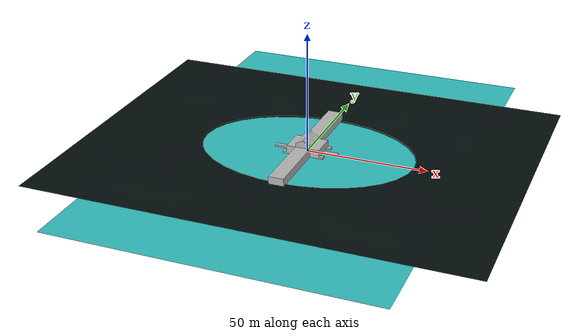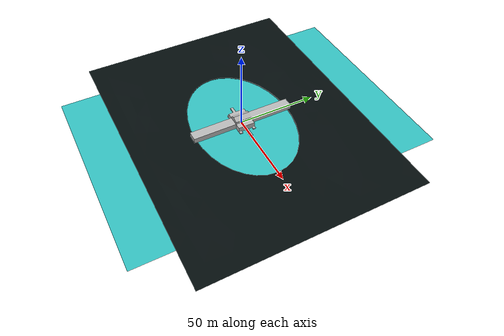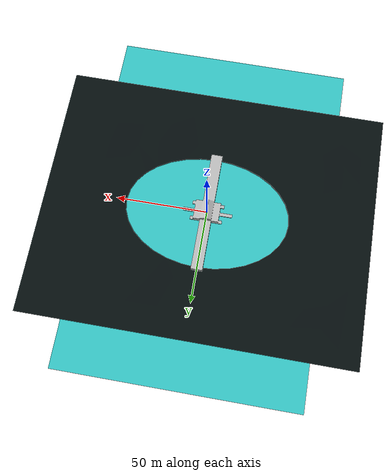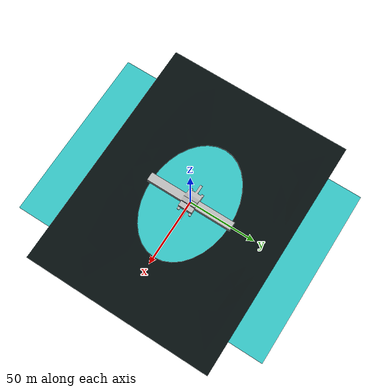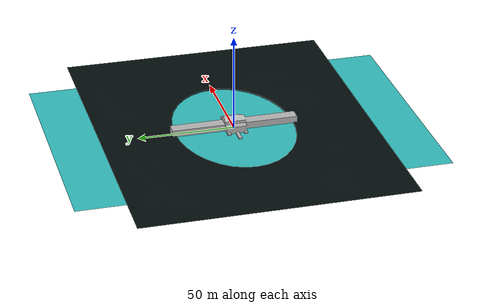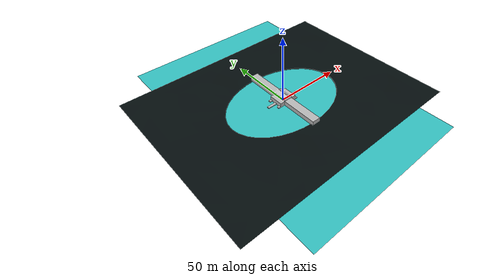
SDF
<sdf version='1.6'>
  <world name='transdec'>
    <gui>
      <camera name='user_camera'>
        <pose>0 0 100 0 1.57 1.57</pose>
      </camera>
    </gui>

    <physics name='default_physics' default='1' type='ode'>
      <max_step_size>0.002</max_step_size>
      <real_time_factor>1</real_time_factor>
      <real_time_update_rate>500</real_time_update_rate>
      <ode>
        <solver>
          <type>quick</type>
          <iters>50</iters>
          <sor>0.5</sor>
          <use_dynamic_moi_rescaling>0</use_dynamic_moi_rescaling>
        </solver>
        <constraints>
          <cfm>0</cfm>
          <erp>0.2</erp>
          <contact_max_correcting_vel>100</contact_max_correcting_vel>
          <contact_surface_layer>0.001</contact_surface_layer>
        </constraints>
      </ode>
    </physics>
    <scene>
      <ambient>0.01 0.01 0.01 1</ambient>
      <sky>
        <clouds>
          <speed>12</speed>
        </clouds>
      </sky>
      <fog>
        <color>0.1 0.2 0.3 1.0</color>
        <type>linear</type>
        <density>0.01</density>
        <start>2.5</start>
        <end>0</end>
      </fog>
      <shadows>1</shadows>
      <background>0.7 0.7 0.7 1</background>
    </scene>
    <spherical_coordinates>
      <latitude_deg>47.6279</latitude_deg>
      <longitude_deg>9.33455</longitude_deg>
      <surface_model>EARTH_WGS84</surface_model>
      <elevation>0</elevation>
      <heading_deg>0</heading_deg>
    </spherical_coordinates>
    <!-- Global light source -->
    <light type="directional" name="sun_diffuse">
      <pose>0 0 0 0 0 0</pose>
      <diffuse>1 1 1 1</diffuse>
      <specular>.1 .1 .1 1</specular>
      <direction>-0.3 -0.3 -1</direction>
      <attenuation>
        <constant>1</constant>
      </attenuation>
      <cast_shadows>false</cast_shadows>
    </light>
    <model name='world_ned'>
      <pose frame=''>0 0 0 0 -0 0</pose>
      <static>1</static>
      <link name='world_ned'>
        <gravity>0</gravity>
        <pose frame=''>0 0 0 -3.14159 -0 1.5708</pose>
        <visual name='N_visual'>
          <pose frame=''>0.25 0 0 1.5708 -0 1.5708</pose>
          <geometry>
            <cylinder>
              <radius>0.01</radius>
              <length>0.5</length>
            </cylinder>
          </geometry>
          <material>
            <script>
              <uri>file://media/materials/scripts/gazebo.material</uri>
              <name>Gazebo/Red</name>
            </script>
          </material>
        </visual>
        <visual name='E_visual'>
          <pose frame=''>0 0.25 0 1.5708 -0 0</pose>
          <geometry>
            <cylinder>
              <radius>0.01</radius>
              <length>0.5</length>
            </cylinder>
          </geometry>
          <material>
            <script>
              <uri>file://media/materials/scripts/gazebo.material</uri>
              <name>Gazebo/Green</name>
            </script>
          </material>
        </visual>
        <visual name='D_visual'>
          <pose frame=''>0 0 0.25 0 -0 0</pose>
          <geometry>
            <cylinder>
              <radius>0.01</radius>
              <length>0.5</length>
            </cylinder>
          </geometry>
          <material>
            <script>
              <uri>file://media/materials/scripts/gazebo.material</uri>
              <name>Gazebo/Blue</name>
            </script>
          </material>
        </visual>
        <self_collide>0</self_collide>
        <enable_wind>0</enable_wind>
        <kinematic>0</kinematic>
      </link>
    </model>
    <model name='lake'>
      <static>1</static>
      <link name='lake_link'>
        <visual name='lake_bottom'>
          <cast_shadows>0</cast_shadows>
          <pose frame=''>0 0 0.5 0 0 0</pose>
          <geometry>
            <mesh>
              <uri>model://transdec/meshes/transdec.dae</uri>
              <scale>1 1 1</scale>
            </mesh>
          </geometry>
          <material>
            <script>
              <uri>file://Media/materials/scripts/sand.material</uri>
              <name>UUVSimulator/SandAndStones</name>
            </script>
          </material>
        </visual>
        <collision name='lake_bottom'>
          <pose frame=''>0 0 0.5 0 -0 0</pose>
          <geometry>
            <mesh>
              <uri>model://transdec/meshes/transdec.dae</uri>
              <scale>1 1 1</scale>
            </mesh>
          </geometry>
          <max_contacts>10</max_contacts>
          <surface>
            <contact>
              <ode/>
            </contact>
            <bounce/>
            <friction>
              <torsional>
                <ode/>
              </torsional>
              <ode/>
            </friction>
          </surface>
        </collision>
        <visual name='surface'>
          <pose frame=''>0 0 0 0 -0 0</pose>
          <geometry>
            <mesh>
              <uri>model://water_surface/meshes/water_surface.dae</uri>
              <scale>1 1 1</scale>
            </mesh>
          </geometry>
          <material>
            <script>
              <uri>file://Media/materials/scripts/water.material</uri>
              <name>UUVSimulator/StaticTurquoiseWater</name>
            </script>
          </material>
        </visual>
        <self_collide>0</self_collide>
        <enable_wind>0</enable_wind>
        <kinematic>0</kinematic>
      </link>
      <pose frame=''>0 0 0 0 -0 0</pose>
    </model>
    <plugin name='underwater_current_plugin' filename='libuuv_underwater_current_ros_plugin.so'>
      <namespace>hydrodynamics</namespace>
      <constant_current>
        <topic>current_velocity</topic>
        <velocity>
          <mean>0</mean>
          <min>0</min>
          <max>5</max>
          <mu>0.0</mu>
          <noiseAmp>0.0</noiseAmp>
        </velocity>
        <horizontal_angle>
          <mean>0</mean>
          <min>-3.141592653589793238</min>
          <max>3.141592653589793238</max>
          <mu>0.0</mu>
          <noiseAmp>0.0</noiseAmp>
        </horizontal_angle>
        <vertical_angle>
          <mean>0</mean>
          <min>-3.141592653589793238</min>
          <max>3.141592653589793238</max>
          <mu>0.0</mu>
          <noiseAmp>0.0</noiseAmp>
        </vertical_angle>
      </constant_current>
    </plugin>
    <plugin name='sc_interface' filename='libuuv_sc_ros_interface_plugin.so'/>
    <gravity>0 0 -9.8</gravity>
    <magnetic_field>6e-06 2.3e-05 -4.2e-05</magnetic_field>
    <atmosphere type='adiabatic'/>
    <wind/>
    <gui fullscreen='0'>
      <camera name='user_camera'>
        <pose frame=''>5 -5 2 0 0.275643 2.35619</pose>
        <view_controller>orbit</view_controller>
        <projection_type>perspective</projection_type>
      </camera>
    </gui>
    <model name='transdec_bridge'>
      <static>1</static>
      <link name='link'>
        <pose frame=''>0 0 0 0 -0 0</pose>
        <must_be_base_link>1</must_be_base_link>
        <visual name='visual'>
          <cast_shadows>0</cast_shadows>
          <geometry>
            <mesh>
              <uri>model://transdec_bridge/meshes/transdec_bridge.dae</uri>
            </mesh>
          </geometry>
        </visual>
        <self_collide>0</self_collide>
        <enable_wind>0</enable_wind>
        <kinematic>0</kinematic>
      </link>
      <pose frame=''>0 0 0 0 0 0</pose>
    </model>
  </world>
</sdf>
